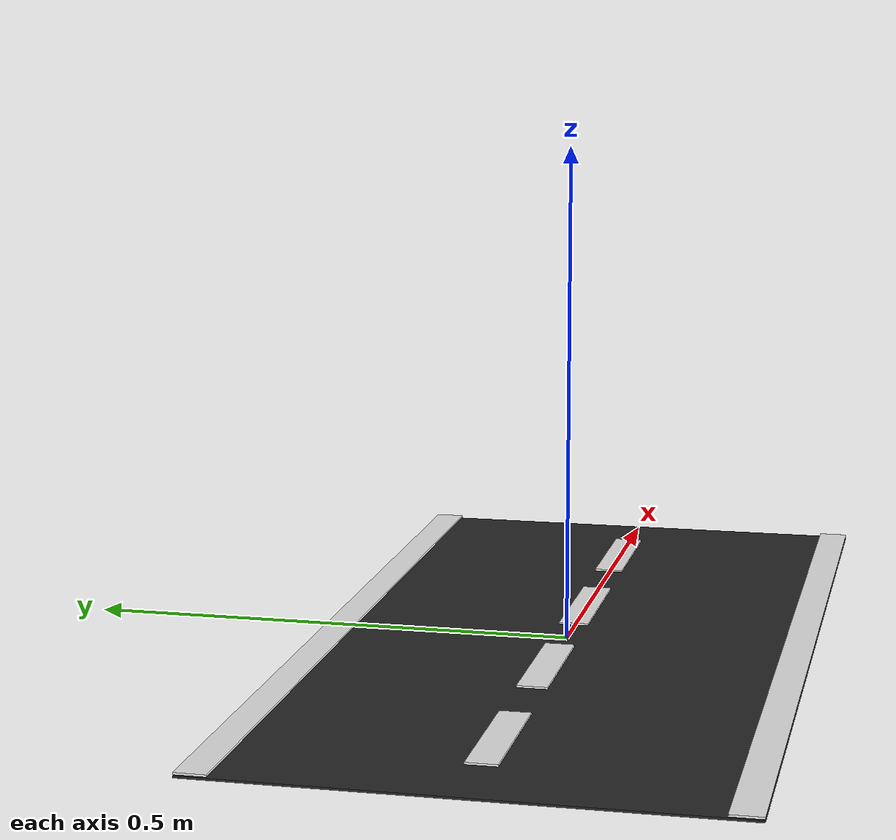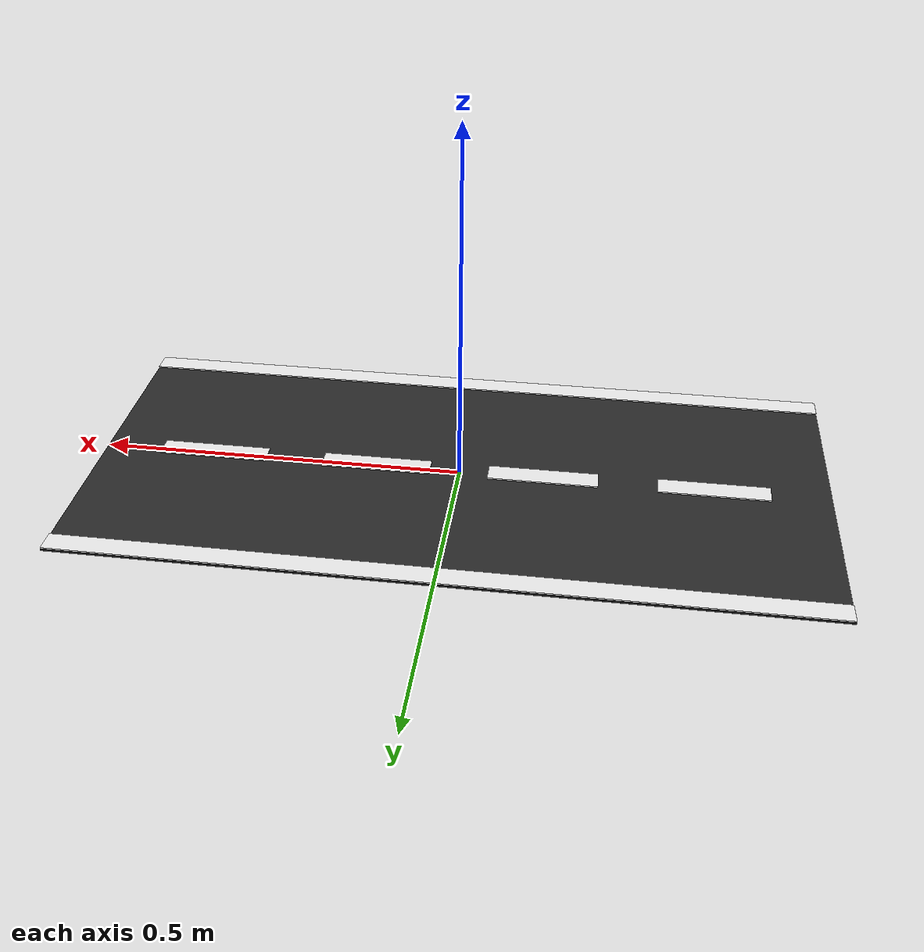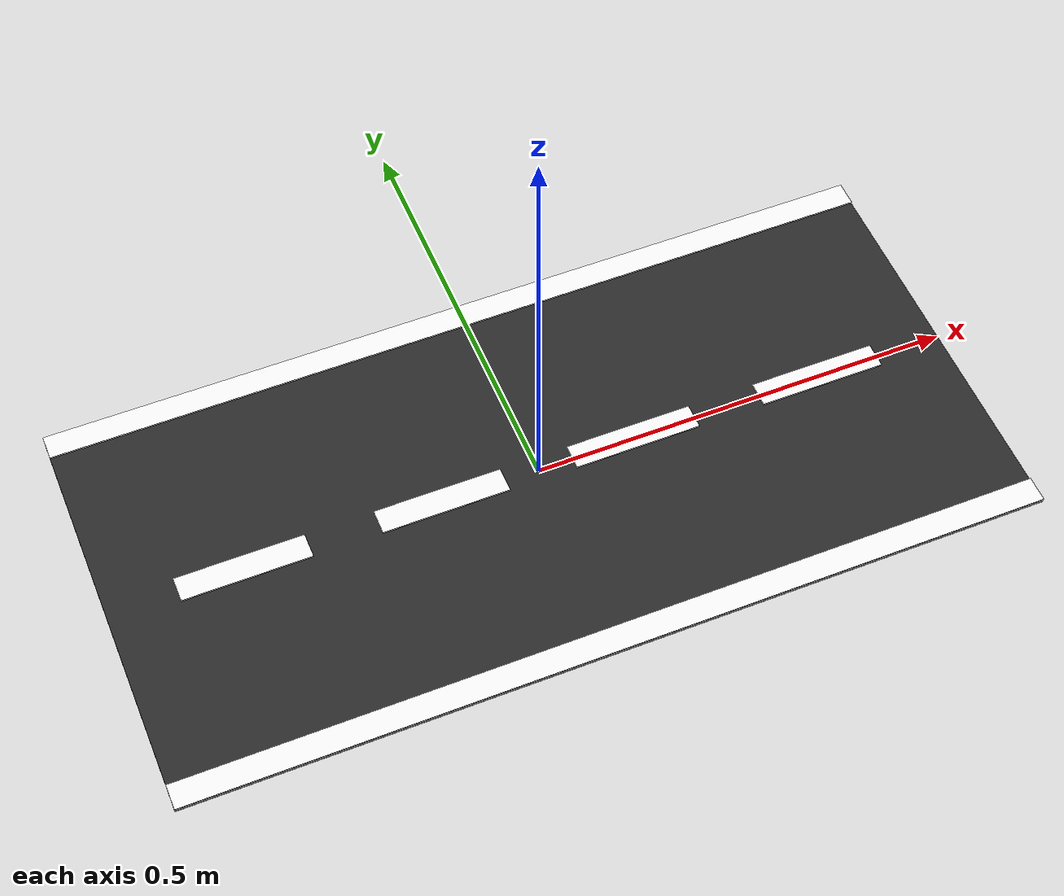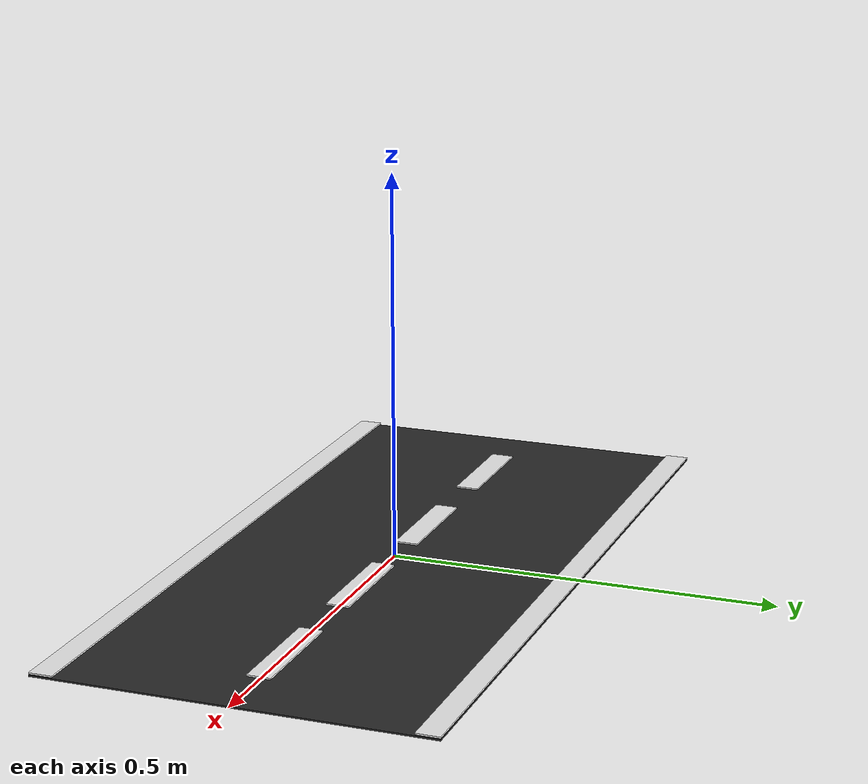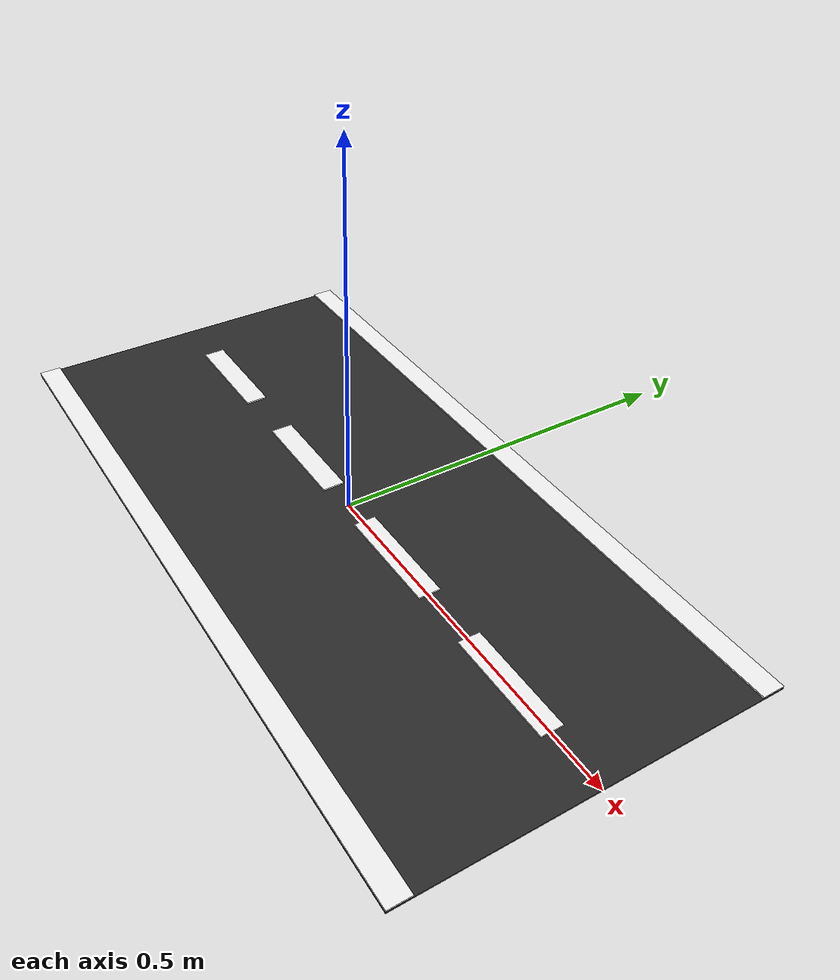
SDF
<?xml version="1.0"?>
<sdf version="1.6">
  <model name="track_straight_1m">
    <static>true</static>
    <link name="link">
      <visual name="v001">
        <pose>0.00000 0.00000 0.00100 0 0 0.00000</pose>
        <geometry>
          <box>
            <size>1.00000 0.50000 0.00200</size>
          </box>
        </geometry>
        <material>
          <ambient>0.180 0.180 0.180 1</ambient>
          <diffuse>0.180 0.180 0.180 1</diffuse>
          <specular>0.05 0.05 0.05 1</specular>
        </material>
      </visual>
      <visual name="v002">
        <pose>0.00000 0.23500 0.00400 0 0 0.00000</pose>
        <geometry>
          <box>
            <size>1.00000 0.03000 0.00200</size>
          </box>
        </geometry>
        <material>
          <ambient>1.000 1.000 1.000 1</ambient>
          <diffuse>1.000 1.000 1.000 1</diffuse>
          <specular>0.05 0.05 0.05 1</specular>
        </material>
      </visual>
      <visual name="v003">
        <pose>0.00000 -0.23500 0.00400 0 0 0.00000</pose>
        <geometry>
          <box>
            <size>1.00000 0.03000 0.00200</size>
          </box>
        </geometry>
        <material>
          <ambient>1.000 1.000 1.000 1</ambient>
          <diffuse>1.000 1.000 1.000 1</diffuse>
          <specular>0.05 0.05 0.05 1</specular>
        </material>
      </visual>
      <visual name="v004">
        <pose>-0.34500 0.00000 0.00400 0 0 0.00000</pose>
        <geometry>
          <box>
            <size>0.15000 0.03000 0.00200</size>
          </box>
        </geometry>
        <material>
          <ambient>1.000 1.000 1.000 1</ambient>
          <diffuse>1.000 1.000 1.000 1</diffuse>
          <specular>0.05 0.05 0.05 1</specular>
        </material>
      </visual>
      <visual name="v005">
        <pose>-0.11500 0.00000 0.00400 0 0 0.00000</pose>
        <geometry>
          <box>
            <size>0.15000 0.03000 0.00200</size>
          </box>
        </geometry>
        <material>
          <ambient>1.000 1.000 1.000 1</ambient>
          <diffuse>1.000 1.000 1.000 1</diffuse>
          <specular>0.05 0.05 0.05 1</specular>
        </material>
      </visual>
      <visual name="v006">
        <pose>0.11500 0.00000 0.00400 0 0 0.00000</pose>
        <geometry>
          <box>
            <size>0.15000 0.03000 0.00200</size>
          </box>
        </geometry>
        <material>
          <ambient>1.000 1.000 1.000 1</ambient>
          <diffuse>1.000 1.000 1.000 1</diffuse>
          <specular>0.05 0.05 0.05 1</specular>
        </material>
      </visual>
      <visual name="v007">
        <pose>0.34500 0.00000 0.00400 0 0 0.00000</pose>
        <geometry>
          <box>
            <size>0.15000 0.03000 0.00200</size>
          </box>
        </geometry>
        <material>
          <ambient>1.000 1.000 1.000 1</ambient>
          <diffuse>1.000 1.000 1.000 1</diffuse>
          <specular>0.05 0.05 0.05 1</specular>
        </material>
      </visual>
    </link>
  </model>
</sdf>
